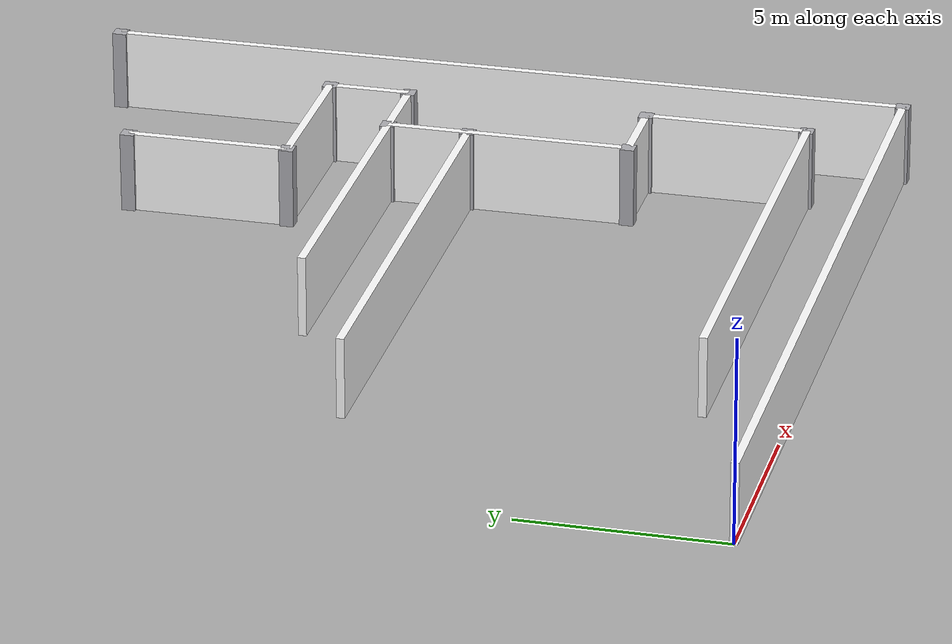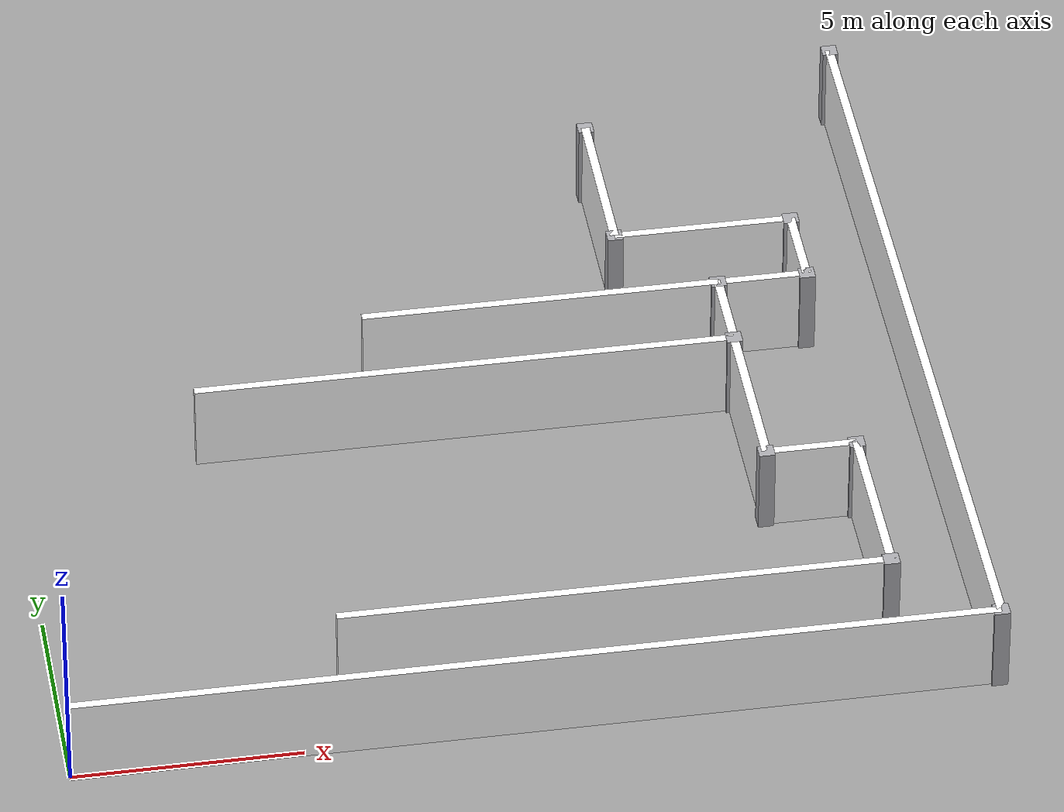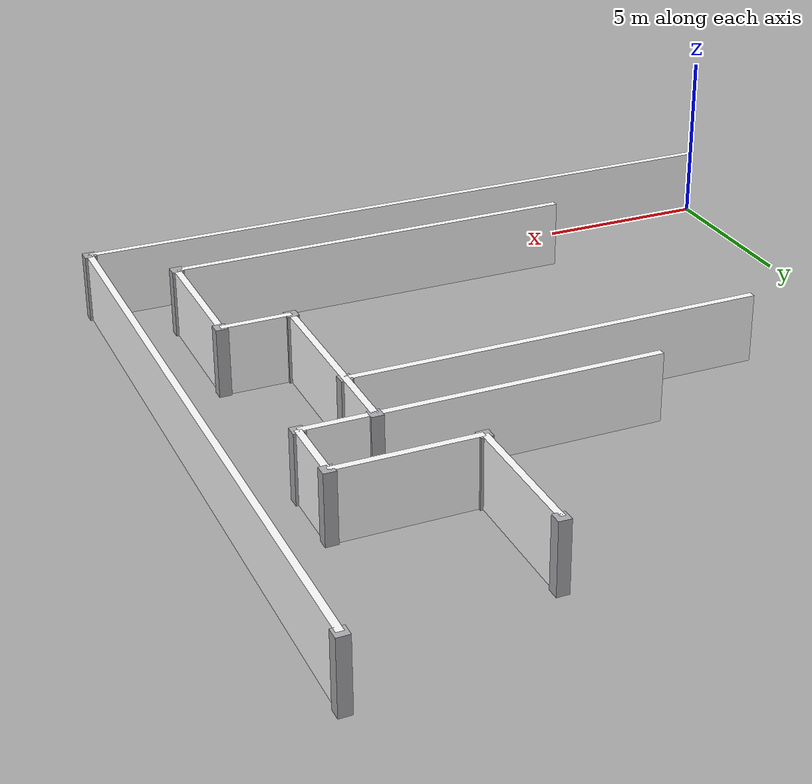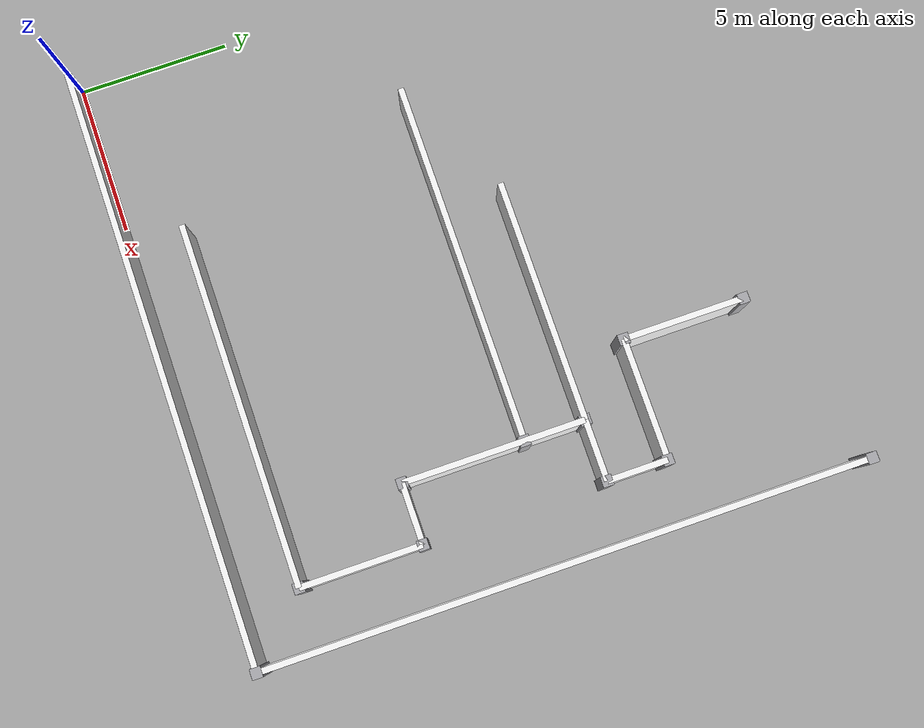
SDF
<sdf version="1.9">
 <world name="maze_world">
  <model name="wall_01">
   <static>true</static>
   <pose>20.0 10.0 1.0 0 0 1.570796326795</pose>
   <link name="link">
    <collision name="collision"><geometry><box><size>20.0 0.2 2.0</size></box></geometry></collision>
    <visual name="visual">
     <geometry><box><size>20.0 0.2 2.0</size></box></geometry>
     <material>
      <ambient>1.0 1.0 1.0 1.0</ambient>
      <diffuse>1.0 1.0 1.0 1.0</diffuse>
      <specular>0.05 0.05 0.05 1.0</specular>
      <pbr>
       <metal>
        <albedo_map>model://bot_worlds/assets/textures/wall_tex_01.png</albedo_map>
        <roughness>0.95</roughness>
        <metalness>0.0</metalness>
       </metal>
      </pbr>
     </material>
    </visual>
   </link>
  </model>
  <model name="wall_04">
   <static>true</static>
   <pose>12.0 2.0 1.0 0 0 0.0</pose>
   <link name="link">
    <collision name="collision"><geometry><box><size>12.0 0.2 2.0</size></box></geometry></collision>
    <visual name="visual">
     <geometry><box><size>12.0 0.2 2.0</size></box></geometry>
     <material>
      <ambient>1.0 1.0 1.0 1.0</ambient>
      <diffuse>1.0 1.0 1.0 1.0</diffuse>
      <specular>0.05 0.05 0.05 1.0</specular>
      <pbr>
       <metal>
        <albedo_map>model://bot_worlds/assets/textures/wall_tex_04.png</albedo_map>
        <roughness>0.95</roughness>
        <metalness>0.0</metalness>
       </metal>
      </pbr>
     </material>
    </visual>
   </link>
  </model>
  <model name="wall_05">
   <static>true</static>
   <pose>18.0 4.0 1.0 0 0 1.570796326795</pose>
   <link name="link">
    <collision name="collision"><geometry><box><size>4.0 0.2 2.0</size></box></geometry></collision>
    <visual name="visual">
     <geometry><box><size>4.0 0.2 2.0</size></box></geometry>
     <material>
      <ambient>1.0 1.0 1.0 1.0</ambient>
      <diffuse>1.0 1.0 1.0 1.0</diffuse>
      <specular>0.05 0.05 0.05 1.0</specular>
      <pbr>
       <metal>
        <albedo_map>model://bot_worlds/assets/textures/wall_tex_05.png</albedo_map>
        <roughness>0.95</roughness>
        <metalness>0.0</metalness>
       </metal>
      </pbr>
     </material>
    </visual>
   </link>
  </model>
  <model name="wall_06">
   <static>true</static>
   <pose>17.0 6.0 1.0 0 0 0.0</pose>
   <link name="link">
    <collision name="collision"><geometry><box><size>2.0 0.2 2.0</size></box></geometry></collision>
    <visual name="visual">
     <geometry><box><size>2.0 0.2 2.0</size></box></geometry>
     <material>
      <ambient>1.0 1.0 1.0 1.0</ambient>
      <diffuse>1.0 1.0 1.0 1.0</diffuse>
      <specular>0.05 0.05 0.05 1.0</specular>
      <pbr>
       <metal>
        <albedo_map>model://bot_worlds/assets/textures/wall_tex_06.png</albedo_map>
        <roughness>0.95</roughness>
        <metalness>0.0</metalness>
       </metal>
      </pbr>
     </material>
    </visual>
   </link>
  </model>
  <model name="wall_07">
   <static>true</static>
   <pose>16.0 9.0 1.0 0 0 1.570796326795</pose>
   <link name="link">
    <collision name="collision"><geometry><box><size>6.0 0.2 2.0</size></box></geometry></collision>
    <visual name="visual">
     <geometry><box><size>6.0 0.2 2.0</size></box></geometry>
     <material>
      <ambient>1.0 1.0 1.0 1.0</ambient>
      <diffuse>1.0 1.0 1.0 1.0</diffuse>
      <specular>0.05 0.05 0.05 1.0</specular>
      <pbr>
       <metal>
        <albedo_map>model://bot_worlds/assets/textures/wall_tex_07.png</albedo_map>
        <roughness>0.95</roughness>
        <metalness>0.0</metalness>
       </metal>
      </pbr>
     </material>
    </visual>
   </link>
  </model>
  <model name="wall_08">
   <static>true</static>
   <pose>17.0 12.0 1.0 0 0 0.0</pose>
   <link name="link">
    <collision name="collision"><geometry><box><size>2.0 0.2 2.0</size></box></geometry></collision>
    <visual name="visual">
     <geometry><box><size>2.0 0.2 2.0</size></box></geometry>
     <material>
      <ambient>1.0 1.0 1.0 1.0</ambient>
      <diffuse>1.0 1.0 1.0 1.0</diffuse>
      <specular>0.05 0.05 0.05 1.0</specular>
      <pbr>
       <metal>
        <albedo_map>model://bot_worlds/assets/textures/wall_tex_08.png</albedo_map>
        <roughness>0.95</roughness>
        <metalness>0.0</metalness>
       </metal>
      </pbr>
     </material>
    </visual>
   </link>
  </model>
  <model name="wall_09">
   <static>true</static>
   <pose>18.0 13.0 1.0 0 0 1.570796326795</pose>
   <link name="link">
    <collision name="collision"><geometry><box><size>2.0 0.2 2.0</size></box></geometry></collision>
    <visual name="visual">
     <geometry><box><size>2.0 0.2 2.0</size></box></geometry>
     <material>
      <ambient>1.0 1.0 1.0 1.0</ambient>
      <diffuse>1.0 1.0 1.0 1.0</diffuse>
      <specular>0.05 0.05 0.05 1.0</specular>
      <pbr>
       <metal>
        <albedo_map>model://bot_worlds/assets/textures/wall_tex_09.png</albedo_map>
        <roughness>0.95</roughness>
        <metalness>0.0</metalness>
       </metal>
      </pbr>
     </material>
    </visual>
   </link>
  </model>
  <model name="wall_10">
   <static>true</static>
   <pose>16.0 14.0 1.0 0 0 0.0</pose>
   <link name="link">
    <collision name="collision"><geometry><box><size>4.0 0.2 2.0</size></box></geometry></collision>
    <visual name="visual">
     <geometry><box><size>4.0 0.2 2.0</size></box></geometry>
     <material>
      <ambient>1.0 1.0 1.0 1.0</ambient>
      <diffuse>1.0 1.0 1.0 1.0</diffuse>
      <specular>0.05 0.05 0.05 1.0</specular>
      <pbr>
       <metal>
        <albedo_map>model://bot_worlds/assets/textures/wall_tex_10.png</albedo_map>
        <roughness>0.95</roughness>
        <metalness>0.0</metalness>
       </metal>
      </pbr>
     </material>
    </visual>
   </link>
  </model>
  <model name="wall_11">
   <static>true</static>
   <pose>14.0 16.0 1.0 0 0 1.570796326795</pose>
   <link name="link">
    <collision name="collision"><geometry><box><size>4.0 0.2 2.0</size></box></geometry></collision>
    <visual name="visual">
     <geometry><box><size>4.0 0.2 2.0</size></box></geometry>
     <material>
      <ambient>1.0 1.0 1.0 1.0</ambient>
      <diffuse>1.0 1.0 1.0 1.0</diffuse>
      <specular>0.05 0.05 0.05 1.0</specular>
      <pbr>
       <metal>
        <albedo_map>model://bot_worlds/assets/textures/wall_tex_11.png</albedo_map>
        <roughness>0.95</roughness>
        <metalness>0.0</metalness>
       </metal>
      </pbr>
     </material>
    </visual>
   </link>
  </model>
  <model name="wall_14">
   <static>true</static>
   <pose>12.0 12.0 1.0 0 0 0.0</pose>
   <link name="link">
    <collision name="collision"><geometry><box><size>8.0 0.2 2.0</size></box></geometry></collision>
    <visual name="visual">
     <geometry><box><size>8.0 0.2 2.0</size></box></geometry>
     <material>
      <ambient>1.0 1.0 1.0 1.0</ambient>
      <diffuse>1.0 1.0 1.0 1.0</diffuse>
      <specular>0.05 0.05 0.05 1.0</specular>
      <pbr>
       <metal>
        <albedo_map>model://bot_worlds/assets/textures/wall_tex_14.png</albedo_map>
        <roughness>0.95</roughness>
        <metalness>0.0</metalness>
       </metal>
      </pbr>
     </material>
    </visual>
   </link>
  </model>
  <model name="wall_20">
   <static>true</static>
   <pose>10.0 10.0 1.0 0 0 0.0</pose>
   <link name="link">
    <collision name="collision"><geometry><box><size>12.0 0.2 2.0</size></box></geometry></collision>
    <visual name="visual">
     <geometry><box><size>12.0 0.2 2.0</size></box></geometry>
     <material>
      <ambient>1.0 1.0 1.0 1.0</ambient>
      <diffuse>1.0 1.0 1.0 1.0</diffuse>
      <specular>0.05 0.05 0.05 1.0</specular>
      <pbr>
       <metal>
        <albedo_map>model://bot_worlds/assets/textures/wall_tex_20.png</albedo_map>
        <roughness>0.95</roughness>
        <metalness>0.0</metalness>
       </metal>
      </pbr>
     </material>
    </visual>
   </link>
  </model>
  <model name="wall_21">
   <static>true</static>
   <pose>10.0 0.0 1.0 0 0 0.0</pose>
   <link name="link">
    <collision name="collision"><geometry><box><size>20.0 0.2 2.0</size></box></geometry></collision>
    <visual name="visual">
     <geometry><box><size>20.0 0.2 2.0</size></box></geometry>
     <material>
      <ambient>1.0 1.0 1.0 1.0</ambient>
      <diffuse>1.0 1.0 1.0 1.0</diffuse>
      <specular>0.05 0.05 0.05 1.0</specular>
      <pbr>
       <metal>
        <albedo_map>model://bot_worlds/assets/textures/wall_tex_21.png</albedo_map>
        <roughness>0.95</roughness>
        <metalness>0.0</metalness>
       </metal>
      </pbr>
     </material>
    </visual>
   </link>
  </model>
  <model name="post_015">
   <static>true</static>
   <pose>14.0 14.0 1.0 0 0 0</pose>
   <link name="link">
    <collision name="collision"><geometry><box><size>0.35 0.35 2.0</size></box></geometry></collision>
    <visual name="visual">
     <geometry><box><size>0.35 0.35 2.0</size></box></geometry>
     <material>
      <ambient>0.55 0.55 0.57 1.0</ambient>
      <diffuse>0.68 0.68 0.70 1.0</diffuse>
      <specular>0.03 0.03 0.03 1.0</specular>
      <pbr><metal><metalness>0.25</metalness><roughness>0.95</roughness></metal></pbr>
     </material>
    </visual>
   </link>
  </model>
  <model name="post_016">
   <static>true</static>
   <pose>14.0 18.0 1.0 0 0 0</pose>
   <link name="link">
    <collision name="collision"><geometry><box><size>0.35 0.35 2.0</size></box></geometry></collision>
    <visual name="visual">
     <geometry><box><size>0.35 0.35 2.0</size></box></geometry>
     <material>
      <ambient>0.55 0.55 0.57 1.0</ambient>
      <diffuse>0.68 0.68 0.70 1.0</diffuse>
      <specular>0.03 0.03 0.03 1.0</specular>
      <pbr><metal><metalness>0.25</metalness><roughness>0.95</roughness></metal></pbr>
     </material>
    </visual>
   </link>
  </model>
  <model name="post_017">
   <static>true</static>
   <pose>16.0 6.0 1.0 0 0 0</pose>
   <link name="link">
    <collision name="collision"><geometry><box><size>0.35 0.35 2.0</size></box></geometry></collision>
    <visual name="visual">
     <geometry><box><size>0.35 0.35 2.0</size></box></geometry>
     <material>
      <ambient>0.55 0.55 0.57 1.0</ambient>
      <diffuse>0.68 0.68 0.70 1.0</diffuse>
      <specular>0.03 0.03 0.03 1.0</specular>
      <pbr><metal><metalness>0.25</metalness><roughness>0.95</roughness></metal></pbr>
     </material>
    </visual>
   </link>
  </model>
  <model name="post_018">
   <static>true</static>
   <pose>16.0 10.0 1.0 0 0 0</pose>
   <link name="link">
    <collision name="collision"><geometry><box><size>0.35 0.35 2.0</size></box></geometry></collision>
    <visual name="visual">
     <geometry><box><size>0.35 0.35 2.0</size></box></geometry>
     <material>
      <ambient>0.55 0.55 0.57 1.0</ambient>
      <diffuse>0.68 0.68 0.70 1.0</diffuse>
      <specular>0.03 0.03 0.03 1.0</specular>
      <pbr><metal><metalness>0.25</metalness><roughness>0.95</roughness></metal></pbr>
     </material>
    </visual>
   </link>
  </model>
  <model name="post_019">
   <static>true</static>
   <pose>16.0 12.0 1.0 0 0 0</pose>
   <link name="link">
    <collision name="collision"><geometry><box><size>0.35 0.35 2.0</size></box></geometry></collision>
    <visual name="visual">
     <geometry><box><size>0.35 0.35 2.0</size></box></geometry>
     <material>
      <ambient>0.55 0.55 0.57 1.0</ambient>
      <diffuse>0.68 0.68 0.70 1.0</diffuse>
      <specular>0.03 0.03 0.03 1.0</specular>
      <pbr><metal><metalness>0.25</metalness><roughness>0.95</roughness></metal></pbr>
     </material>
    </visual>
   </link>
  </model>
  <model name="post_020">
   <static>true</static>
   <pose>18.0 2.0 1.0 0 0 0</pose>
   <link name="link">
    <collision name="collision"><geometry><box><size>0.35 0.35 2.0</size></box></geometry></collision>
    <visual name="visual">
     <geometry><box><size>0.35 0.35 2.0</size></box></geometry>
     <material>
      <ambient>0.55 0.55 0.57 1.0</ambient>
      <diffuse>0.68 0.68 0.70 1.0</diffuse>
      <specular>0.03 0.03 0.03 1.0</specular>
      <pbr><metal><metalness>0.25</metalness><roughness>0.95</roughness></metal></pbr>
     </material>
    </visual>
   </link>
  </model>
  <model name="post_021">
   <static>true</static>
   <pose>18.0 6.0 1.0 0 0 0</pose>
   <link name="link">
    <collision name="collision"><geometry><box><size>0.35 0.35 2.0</size></box></geometry></collision>
    <visual name="visual">
     <geometry><box><size>0.35 0.35 2.0</size></box></geometry>
     <material>
      <ambient>0.55 0.55 0.57 1.0</ambient>
      <diffuse>0.68 0.68 0.70 1.0</diffuse>
      <specular>0.03 0.03 0.03 1.0</specular>
      <pbr><metal><metalness>0.25</metalness><roughness>0.95</roughness></metal></pbr>
     </material>
    </visual>
   </link>
  </model>
  <model name="post_022">
   <static>true</static>
   <pose>18.0 12.0 1.0 0 0 0</pose>
   <link name="link">
    <collision name="collision"><geometry><box><size>0.35 0.35 2.0</size></box></geometry></collision>
    <visual name="visual">
     <geometry><box><size>0.35 0.35 2.0</size></box></geometry>
     <material>
      <ambient>0.55 0.55 0.57 1.0</ambient>
      <diffuse>0.68 0.68 0.70 1.0</diffuse>
      <specular>0.03 0.03 0.03 1.0</specular>
      <pbr><metal><metalness>0.25</metalness><roughness>0.95</roughness></metal></pbr>
     </material>
    </visual>
   </link>
  </model>
  <model name="post_023">
   <static>true</static>
   <pose>18.0 14.0 1.0 0 0 0</pose>
   <link name="link">
    <collision name="collision"><geometry><box><size>0.35 0.35 2.0</size></box></geometry></collision>
    <visual name="visual">
     <geometry><box><size>0.35 0.35 2.0</size></box></geometry>
     <material>
      <ambient>0.55 0.55 0.57 1.0</ambient>
      <diffuse>0.68 0.68 0.70 1.0</diffuse>
      <specular>0.03 0.03 0.03 1.0</specular>
      <pbr><metal><metalness>0.25</metalness><roughness>0.95</roughness></metal></pbr>
     </material>
    </visual>
   </link>
  </model>
  <model name="post_024">
   <static>true</static>
   <pose>20.0 0.0 1.0 0 0 0</pose>
   <link name="link">
    <collision name="collision"><geometry><box><size>0.35 0.35 2.0</size></box></geometry></collision>
    <visual name="visual">
     <geometry><box><size>0.35 0.35 2.0</size></box></geometry>
     <material>
      <ambient>0.55 0.55 0.57 1.0</ambient>
      <diffuse>0.68 0.68 0.70 1.0</diffuse>
      <specular>0.03 0.03 0.03 1.0</specular>
      <pbr><metal><metalness>0.25</metalness><roughness>0.95</roughness></metal></pbr>
     </material>
    </visual>
   </link>
  </model>
  <model name="post_025">
   <static>true</static>
   <pose>20.0 20.0 1.0 0 0 0</pose>
   <link name="link">
    <collision name="collision"><geometry><box><size>0.35 0.35 2.0</size></box></geometry></collision>
    <visual name="visual">
     <geometry><box><size>0.35 0.35 2.0</size></box></geometry>
     <material>
      <ambient>0.55 0.55 0.57 1.0</ambient>
      <diffuse>0.68 0.68 0.70 1.0</diffuse>
      <specular>0.03 0.03 0.03 1.0</specular>
      <pbr><metal><metalness>0.25</metalness><roughness>0.95</roughness></metal></pbr>
     </material>
    </visual>
   </link>
  </model>
 </world>
</sdf>
